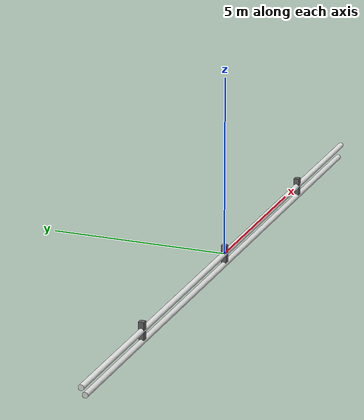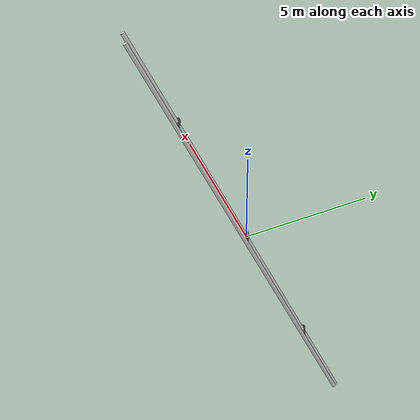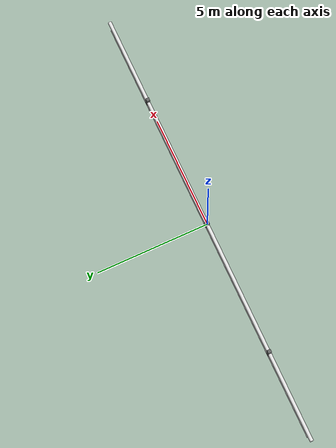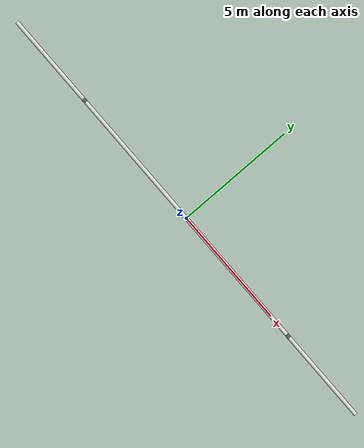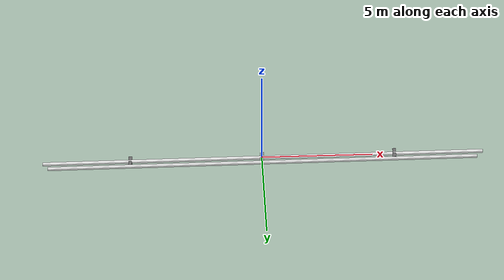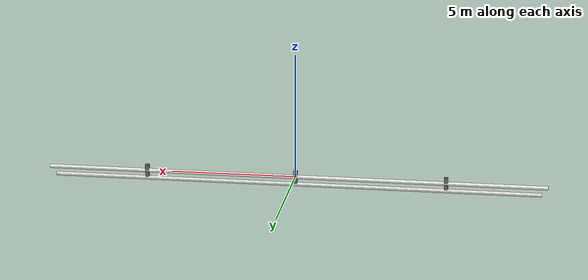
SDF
<?xml version="1.0"?>

<sdf version="1.10">

  <model name="conductor">

    <static>true</static>

    <link name="link">

      <!-- MAIN CONDUCTOR CABLE -->
      <visual name="conductor_main">
        <pose>0 0 0 0 1.57 0</pose>
        <geometry>
          <cylinder>
            <radius>0.08</radius>
            <length>20</length>
          </cylinder>
        </geometry>
        <material>
          <ambient>0.82 0.82 0.82 1</ambient>
          <diffuse>0.9 0.9 0.9 1</diffuse>
          <specular>0.5 0.5 0.5 1</specular>
        </material>
      </visual>

      <!-- CONDUCTOR SWAY -->
      <!-- Slight visual offset to show catenary sag -->
      <visual name="conductor_middle">
        <pose>0 0 -0.3 0 1.57 0</pose>
        <geometry>
          <cylinder>
            <radius>0.08</radius>
            <length>19.5</length>
          </cylinder>
        </geometry>
        <material>
          <ambient>0.8 0.8 0.8 1</ambient>
          <diffuse>0.87 0.87 0.87 1</diffuse>
        </material>
      </visual>

      <!-- VIBRATION DAMPERS -->
      <visual name="damper_1">
        <pose>-6 0 0 0 0 0</pose>
        <geometry>
          <box>
            <size>0.15 0.15 0.5</size>
          </box>
        </geometry>
        <material>
          <ambient>0.3 0.3 0.3 1</ambient>
          <diffuse>0.4 0.4 0.4 1</diffuse>
        </material>
      </visual>

      <visual name="damper_2">
        <pose>0 0 0 0 0 0</pose>
        <geometry>
          <box>
            <size>0.15 0.15 0.5</size>
          </box>
        </geometry>
        <material>
          <ambient>0.3 0.3 0.3 1</ambient>
          <diffuse>0.4 0.4 0.4 1</diffuse>
        </material>
      </visual>

      <visual name="damper_3">
        <pose>6 0 0 0 0 0</pose>
        <geometry>
          <box>
            <size>0.15 0.15 0.5</size>
          </box>
        </geometry>
        <material>
          <ambient>0.3 0.3 0.3 1</ambient>
          <diffuse>0.4 0.4 0.4 1</diffuse>
        </material>
      </visual>

      <!-- COLLISION -->
      <collision name="collision">
        <pose>0 0 0 0 1.57 0</pose>
        <geometry>
          <cylinder>
            <radius>0.1</radius>
            <length>20</length>
          </cylinder>
        </geometry>
      </collision>

    </link>
  </model>
</sdf>
